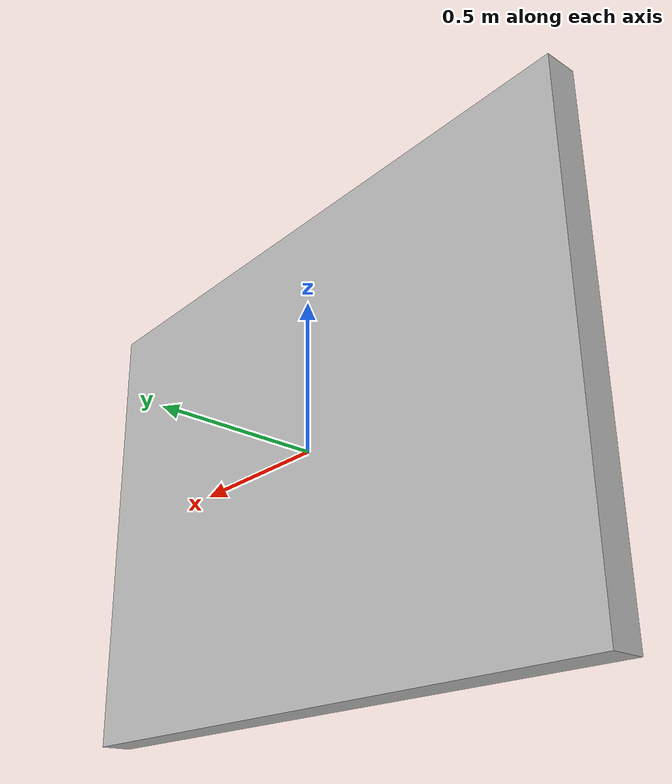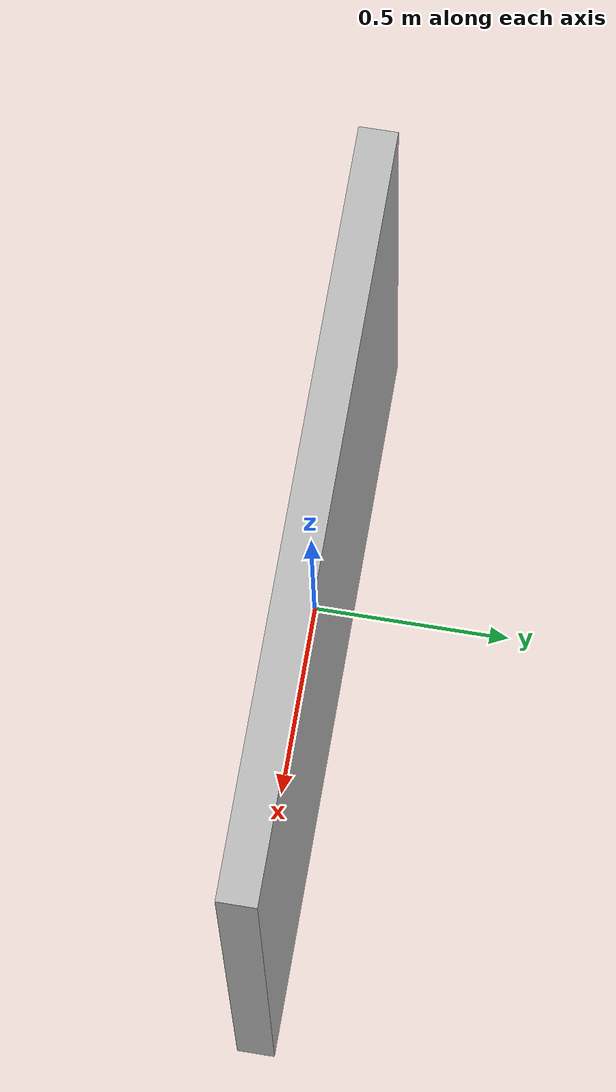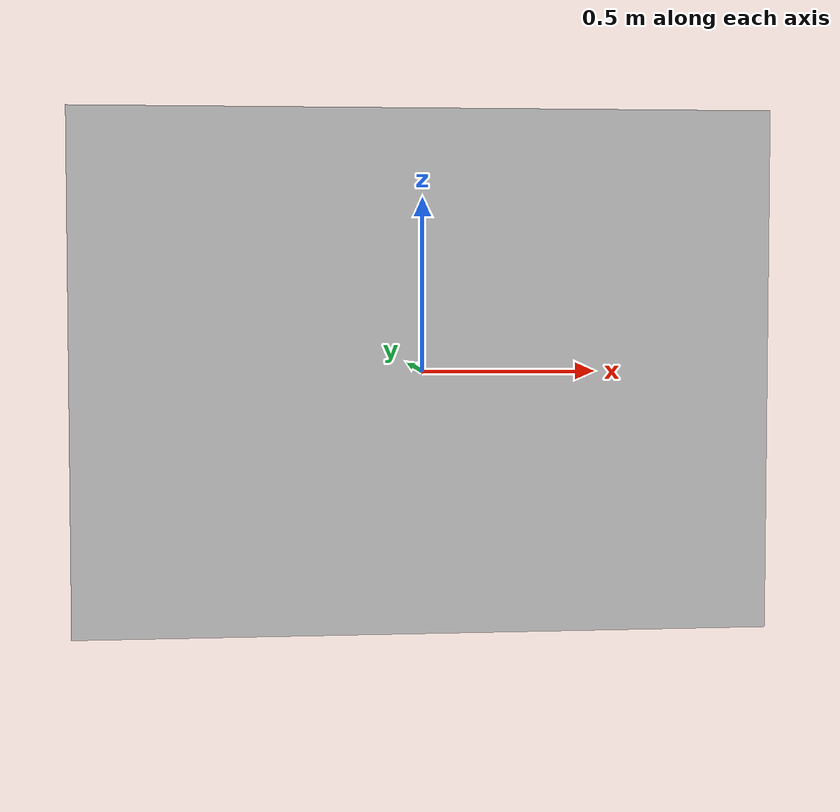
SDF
<?xml version="1.0"?>
<sdf version="1.7">
  <model name="wall">
    <link name="wall_link">
      <visual name="visual">
        <pose>0 0 0 0 0 0</pose>
        <geometry>
          <box>
            <size>2 0.1 1.5</size>
          </box>
        </geometry>
      </visual>
      <collision name="collision">
        <pose>0 0 0 0 0 0</pose>
        <geometry>
          <box>
            <size>2 0.1 1.5</size>
          </box>
        </geometry>
      </collision>
    </link>
  </model>
</sdf>
